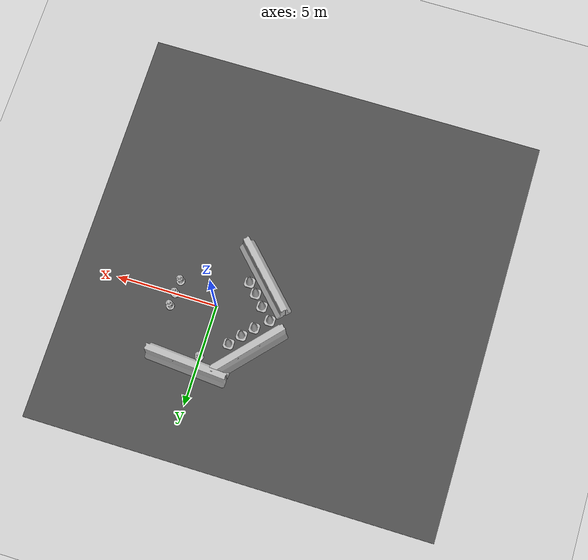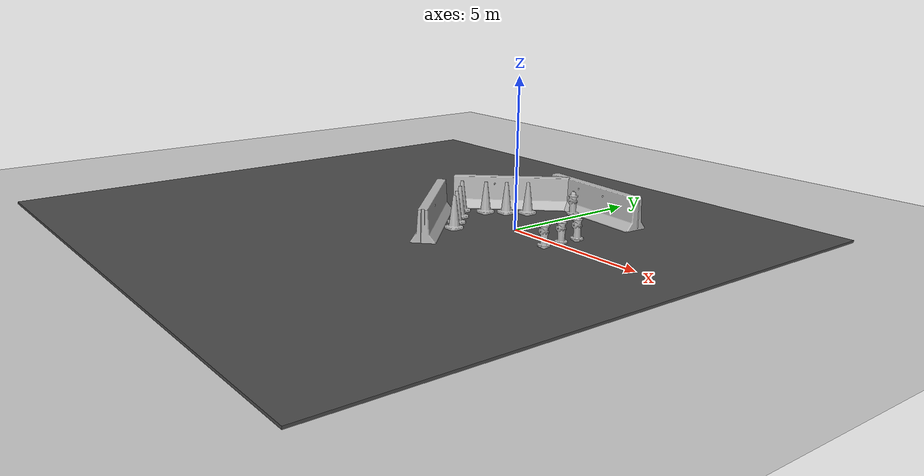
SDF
<sdf version="1.7">
 <world name="default">
  <light name="sun" type="directional">
   <pose>0 0 10 0 -0 0</pose>
   <diffuse>0.8 0.8 0.8 1</diffuse>
   <specular>0.2 0.2 0.2 1</specular>
   <attenuation>
    <range>1000</range>
    <constant>0.9</constant>
    <linear>0.01</linear>
    <quadratic>0.001</quadratic>
   </attenuation>
   <direction>-0.5 0.1 -0.9</direction>
   <spot><inner_angle>0</inner_angle><outer_angle>0</outer_angle><falloff>0</falloff></spot>
  </light>
  <model name="ground_plane">
   <static>1</static>
   <link name="link">
    <collision name="collision">
     <geometry><plane><normal>0 0 1</normal><size>100 100</size></plane></geometry>
     <surface><friction><ode><mu>100</mu><mu2>50</mu2></ode></friction></surface>
    </collision>
    <visual name="visual">
     <cast_shadows>0</cast_shadows>
     <geometry><plane><normal>0 0 1</normal><size>100 100</size></plane></geometry>
     <material>
      <script><uri>file://media/materials/scripts/gazebo.material</uri><name>Gazebo/Grey</name></script>
     </material>
    </visual>
   </link>
  </model>
  <gravity>0 0 -9.8</gravity>
  <magnetic_field>6e-06 2.3e-05 -4.2e-05</magnetic_field>
  <atmosphere type="adiabatic"/>
  <physics type="ode">
   <max_step_size>0.001</max_step_size>
   <real_time_factor>1</real_time_factor>
   <real_time_update_rate>1000</real_time_update_rate>
  </physics>
  <scene><ambient>0.4 0.4 0.4 1</ambient><background>0.7 0.7 0.7 1</background><shadows>1</shadows></scene>
  <audio><device>default</device></audio>
  <spherical_coordinates>
   <surface_model>EARTH_WGS84</surface_model>
   <latitude_deg>0</latitude_deg>
   <longitude_deg>0</longitude_deg>
   <elevation>0</elevation>
   <heading_deg>0</heading_deg>
  </spherical_coordinates>
  <model name="asphalt_plane">
   <static>1</static>
   <link name="link">
    <collision name="collision"><geometry><box><size>20 20 0.1</size></box></geometry></collision>
    <visual name="visual">
     <cast_shadows>0</cast_shadows>
     <geometry><box><size>20 20 0.1</size></box></geometry>
     <material>
      <script>
       <uri>model://asphalt_plane/materials/scripts</uri>
       <uri>model://asphalt_plane/materials/textures</uri>
       <name>vrc/asphalt</name>
      </script>
     </material>
    </visual>
   </link>
   <pose>-2.9265 -2.2886 0 0 -0 0</pose>
  </model>
  <model name="Construction Cone_4_clone_clone">
   <link name="link">
    <collision name="collision">
     <geometry>
      <mesh><scale>10 10 10</scale><uri>model://construction_cone/meshes/construction_cone.dae</uri></mesh>
     </geometry>
    </collision>
    <visual name="visual">
     <geometry>
      <mesh><scale>10 10 10</scale><uri>model://construction_cone/meshes/construction_cone.dae</uri></mesh>
     </geometry>
    </visual>
    <inertial>
     <inertia><ixx>1</ixx><ixy>0</ixy><ixz>0</ixz><iyy>1</iyy><iyz>0</iyz><izz>1</izz></inertia>
     <mass>1</mass>
    </inertial>
   </link>
   <pose>-2.6682 -0.060976 0.05 0 -0 0</pose>
  </model>
  <model name="fire_hydrant">
   <static>1</static>
   <link name="link">
    <collision name="collision">
     <geometry><mesh><uri>model://fire_hydrant/meshes/fire_hydrant.dae</uri></mesh></geometry>
    </collision>
    <visual name="visual">
     <geometry><mesh><uri>model://fire_hydrant/meshes/fire_hydrant.dae</uri></mesh></geometry>
    </visual>
   </link>
   <pose>0.000766 2.61649 0 0 -0 0</pose>
  </model>
  <model name="jersey_barrier">
   <static>1</static>
   <link name="link">
    <visual name="visual">
     <geometry><mesh><uri>model://jersey_barrier/meshes/jersey_barrier.dae</uri></mesh></geometry>
    </visual>
    <collision name="upright">
     <pose>0 0 0.5715 0 -0 0</pose>
     <geometry><box><size>4.06542 0.3063 1.143</size></box></geometry>
    </collision>
    <collision name="base">
     <pose>0 0 0.032258 0 -0 0</pose>
     <geometry><box><size>4.06542 0.8107 0.064516</size></box></geometry>
    </collision>
    <collision name="base2">
     <pose>0 0 0.1 0 -0 0</pose>
     <geometry><box><size>4.06542 0.65 0.1</size></box></geometry>
    </collision>
    <collision name="base3">
     <pose>0 0 0.2 0 -0 0</pose>
     <geometry><box><size>4.06542 0.5 0.1</size></box></geometry>
    </collision>
    <collision name="left-angle">
     <pose>0 -0.224 0.2401 0.9 -0 0</pose>
     <geometry><box><size>4.06542 0.5 0.064516</size></box></geometry>
    </collision>
    <collision name="right-angle">
     <pose>0 0.224 0.2401 -0.9 0 0</pose>
     <geometry><box><size>4.06542 0.5 0.064516</size></box></geometry>
    </collision>
   </link>
   <pose>-1.85554 -1.95103 0 0 0 -0.801658</pose>
  </model>
  <model name="jersey_barrier_0">
   <static>1</static>
   <link name="link">
    <visual name="visual">
     <geometry><mesh><uri>model://jersey_barrier/meshes/jersey_barrier.dae</uri></mesh></geometry>
    </visual>
    <collision name="upright">
     <pose>0 0 0.5715 0 -0 0</pose>
     <geometry><box><size>4.06542 0.3063 1.143</size></box></geometry>
    </collision>
    <collision name="base">
     <pose>0 0 0.032258 0 -0 0</pose>
     <geometry><box><size>4.06542 0.8107 0.064516</size></box></geometry>
    </collision>
    <collision name="base2">
     <pose>0 0 0.1 0 -0 0</pose>
     <geometry><box><size>4.06542 0.65 0.1</size></box></geometry>
    </collision>
    <collision name="base3">
     <pose>0 0 0.2 0 -0 0</pose>
     <geometry><box><size>4.06542 0.5 0.1</size></box></geometry>
    </collision>
    <collision name="left-angle">
     <pose>0 -0.224 0.2401 0.9 -0 0</pose>
     <geometry><box><size>4.06542 0.5 0.064516</size></box></geometry>
    </collision>
    <collision name="right-angle">
     <pose>0 0.224 0.2401 -0.9 0 0</pose>
     <geometry><box><size>4.06542 0.5 0.064516</size></box></geometry>
    </collision>
   </link>
   <pose>-2.11579 1.72846 0 0 -0 0.839514</pose>
  </model>
  <model name="jersey_barrier_2">
   <static>1</static>
   <link name="link">
    <visual name="visual">
     <geometry><mesh><uri>model://jersey_barrier/meshes/jersey_barrier.dae</uri></mesh></geometry>
    </visual>
    <collision name="upright">
     <pose>0 0 0.5715 0 -0 0</pose>
     <geometry><box><size>4.06542 0.3063 1.143</size></box></geometry>
    </collision>
    <collision name="base">
     <pose>0 0 0.032258 0 -0 0</pose>
     <geometry><box><size>4.06542 0.8107 0.064516</size></box></geometry>
    </collision>
    <collision name="base2">
     <pose>0 0 0.1 0 -0 0</pose>
     <geometry><box><size>4.06542 0.65 0.1</size></box></geometry>
    </collision>
    <collision name="base3">
     <pose>0 0 0.2 0 -0 0</pose>
     <geometry><box><size>4.06542 0.5 0.1</size></box></geometry>
    </collision>
    <collision name="left-angle">
     <pose>0 -0.224 0.2401 0.9 -0 0</pose>
     <geometry><box><size>4.06542 0.5 0.064516</size></box></geometry>
    </collision>
    <collision name="right-angle">
     <pose>0 0.224 0.2401 -0.9 0 0</pose>
     <geometry><box><size>4.06542 0.5 0.064516</size></box></geometry>
    </collision>
   </link>
   <pose>0.443474 3.1446 0 0 0 -0.074187</pose>
  </model>
  <model name="Construction Cone_4_clone_clone_clone_0">
   <link name="link">
    <collision name="collision">
     <geometry>
      <mesh><scale>10 10 10</scale><uri>model://construction_cone/meshes/construction_cone.dae</uri></mesh>
     </geometry>
    </collision>
    <visual name="visual">
     <geometry>
      <mesh><scale>10 10 10</scale><uri>model://construction_cone/meshes/construction_cone.dae</uri></mesh>
     </geometry>
    </visual>
    <inertial>
     <inertia><ixx>1</ixx><ixy>0</ixy><ixz>0</ixz><iyy>1</iyy><iyz>0</iyz><izz>1</izz></inertia>
     <mass>1</mass>
    </inertial>
   </link>
   <pose>-2.10482 -0.60902 0.05 -1e-06 -1e-06 0</pose>
  </model>
  <model name="Construction Cone_4_clone_clone_clone_1">
   <link name="link">
    <collision name="collision">
     <geometry>
      <mesh><scale>10 10 10</scale><uri>model://construction_cone/meshes/construction_cone.dae</uri></mesh>
     </geometry>
    </collision>
    <visual name="visual">
     <geometry>
      <mesh><scale>10 10 10</scale><uri>model://construction_cone/meshes/construction_cone.dae</uri></mesh>
     </geometry>
    </visual>
    <inertial>
     <inertia><ixx>1</ixx><ixy>0</ixy><ixz>0</ixz><iyy>1</iyy><iyz>0</iyz><izz>1</izz></inertia>
     <mass>1</mass>
    </inertial>
   </link>
   <pose>-2.06646 0.501267 0.049992 8e-06 -0 0</pose>
  </model>
  <model name="Construction Cone_4_clone_clone_clone_2">
   <link name="link">
    <collision name="collision">
     <geometry>
      <mesh><scale>10 10 10</scale><uri>model://construction_cone/meshes/construction_cone.dae</uri></mesh>
     </geometry>
    </collision>
    <visual name="visual">
     <geometry>
      <mesh><scale>10 10 10</scale><uri>model://construction_cone/meshes/construction_cone.dae</uri></mesh>
     </geometry>
    </visual>
    <inertial>
     <inertia><ixx>1</ixx><ixy>0</ixy><ixz>0</ixz><iyy>1</iyy><iyz>0</iyz><izz>1</izz></inertia>
     <mass>1</mass>
    </inertial>
   </link>
   <pose>-1.62516 -1.12694 0.049991 -1e-06 -0 -0</pose>
  </model>
  <model name="Construction Cone_4_clone_clone_clone_3">
   <link name="link">
    <collision name="collision">
     <geometry>
      <mesh><scale>10 10 10</scale><uri>model://construction_cone/meshes/construction_cone.dae</uri></mesh>
     </geometry>
    </collision>
    <visual name="visual">
     <geometry>
      <mesh><scale>10 10 10</scale><uri>model://construction_cone/meshes/construction_cone.dae</uri></mesh>
     </geometry>
    </visual>
    <inertial>
     <inertia><ixx>1</ixx><ixy>0</ixy><ixz>0</ixz><iyy>1</iyy><iyz>0</iyz><izz>1</izz></inertia>
     <mass>1</mass>
    </inertial>
   </link>
   <pose>-1.18524 -1.5802 0.05 0 1e-06 0</pose>
  </model>
  <model name="Construction Cone_4_clone_clone_clone_4">
   <link name="link">
    <collision name="collision">
     <geometry>
      <mesh><scale>10 10 10</scale><uri>model://construction_cone/meshes/construction_cone.dae</uri></mesh>
     </geometry>
    </collision>
    <visual name="visual">
     <geometry>
      <mesh><scale>10 10 10</scale><uri>model://construction_cone/meshes/construction_cone.dae</uri></mesh>
     </geometry>
    </visual>
    <inertial>
     <inertia><ixx>1</ixx><ixy>0</ixy><ixz>0</ixz><iyy>1</iyy><iyz>0</iyz><izz>1</izz></inertia>
     <mass>1</mass>
    </inertial>
   </link>
   <pose>-1.58993 1.02235 0.050001 2e-06 -0 0</pose>
  </model>
  <model name="Construction Cone_4_clone_clone_clone_5">
   <link name="link">
    <collision name="collision">
     <geometry>
      <mesh><scale>10 10 10</scale><uri>model://construction_cone/meshes/construction_cone.dae</uri></mesh>
     </geometry>
    </collision>
    <visual name="visual">
     <geometry>
      <mesh><scale>10 10 10</scale><uri>model://construction_cone/meshes/construction_cone.dae</uri></mesh>
     </geometry>
    </visual>
    <inertial>
     <inertia><ixx>1</ixx><ixy>0</ixy><ixz>0</ixz><iyy>1</iyy><iyz>0</iyz><izz>1</izz></inertia>
     <mass>1</mass>
    </inertial>
   </link>
   <pose>-1.12586 1.58595 0.049991 2e-06 -0 0</pose>
  </model>
  <model name="fire_hydrant_clone">
   <static>1</static>
   <link name="link">
    <collision name="collision">
     <geometry><mesh><uri>model://fire_hydrant/meshes/fire_hydrant.dae</uri></mesh></geometry>
    </collision>
    <visual name="visual">
     <geometry><mesh><uri>model://fire_hydrant/meshes/fire_hydrant.dae</uri></mesh></geometry>
    </visual>
   </link>
   <pose>2.10682 0.651155 0 0 -0 0</pose>
  </model>
  <model name="fire_hydrant_clone_0">
   <static>1</static>
   <link name="link">
    <collision name="collision">
     <geometry><mesh><uri>model://fire_hydrant/meshes/fire_hydrant.dae</uri></mesh></geometry>
    </collision>
    <visual name="visual">
     <geometry><mesh><uri>model://fire_hydrant/meshes/fire_hydrant.dae</uri></mesh></geometry>
    </visual>
   </link>
   <pose>2.07174 0.003088 0 0 -0 0</pose>
  </model>
  <model name="fire_hydrant_clone_1">
   <static>1</static>
   <link name="link">
    <collision name="collision">
     <geometry><mesh><uri>model://fire_hydrant/meshes/fire_hydrant.dae</uri></mesh></geometry>
    </collision>
    <visual name="visual">
     <geometry><mesh><uri>model://fire_hydrant/meshes/fire_hydrant.dae</uri></mesh></geometry>
    </visual>
   </link>
   <pose>2.00838 -0.658895 0 0 -0 0</pose>
  </model>
 </world>
</sdf>
